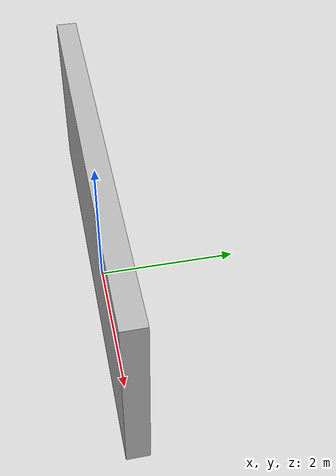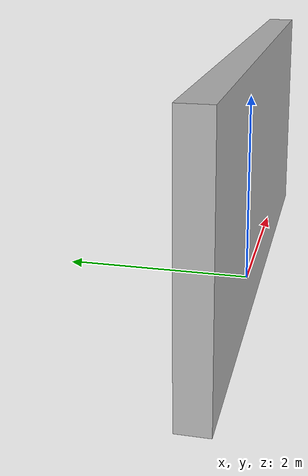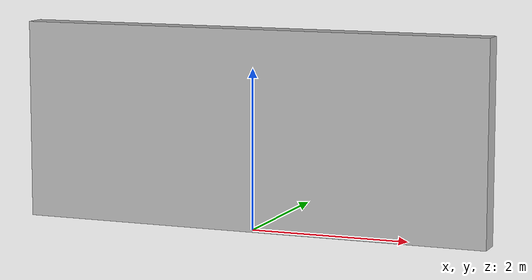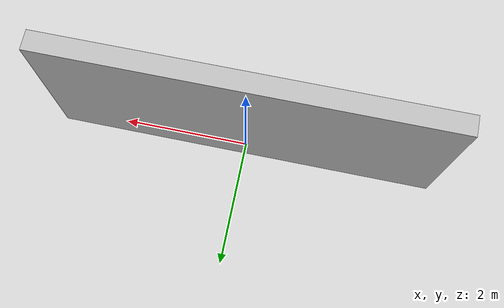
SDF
<?xml version="1.0" ?>
<sdf version="1.5">
  <model name="indoorwall_6m">
    <static>true</static>
    <link name="link">
      <pose>0 0 1.25 0 0 0</pose>
      <collision name="collision">
        <geometry>
          <box>
            <size>6.0 0.3 2.5</size>
          </box>
        </geometry>
      </collision>
      <visual name="visual">
        <cast_shadows>false</cast_shadows>
        <geometry>
          <box>
            <size>6.0 0.3 2.5</size>
          </box>
        </geometry>
        <material>
          <script>
            <uri>model://indoorwall_6m/materials/scripts</uri>
            <uri>model://indoorwall_6m/materials/textures</uri>
            <name>vrc/indoorwall_6m</name>
          </script>
        </material>
      </visual>
    </link>
  </model>
</sdf>
